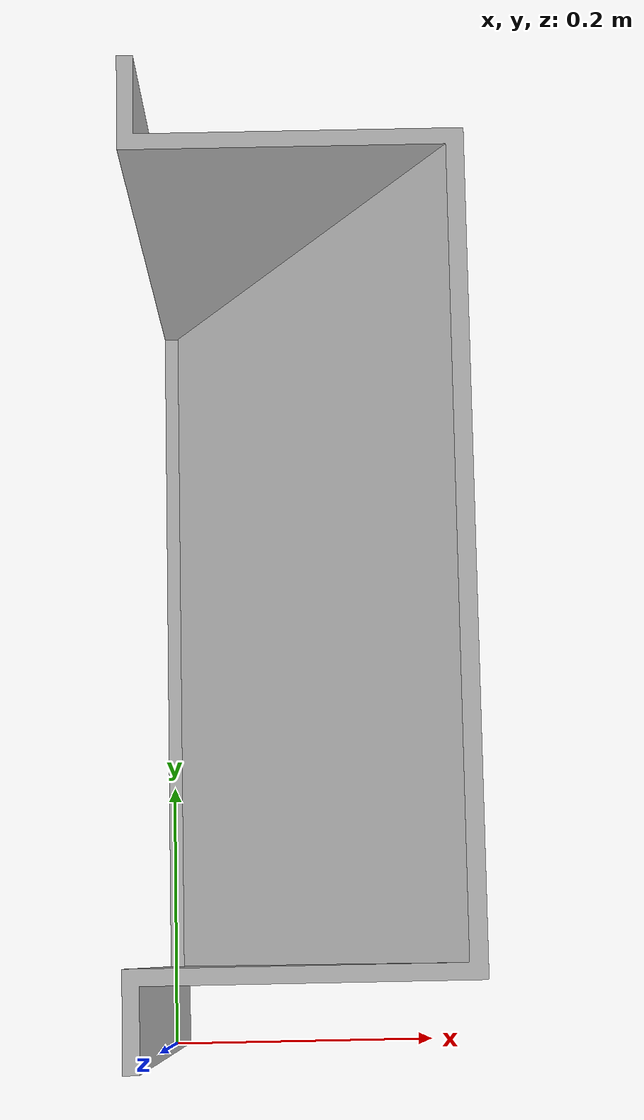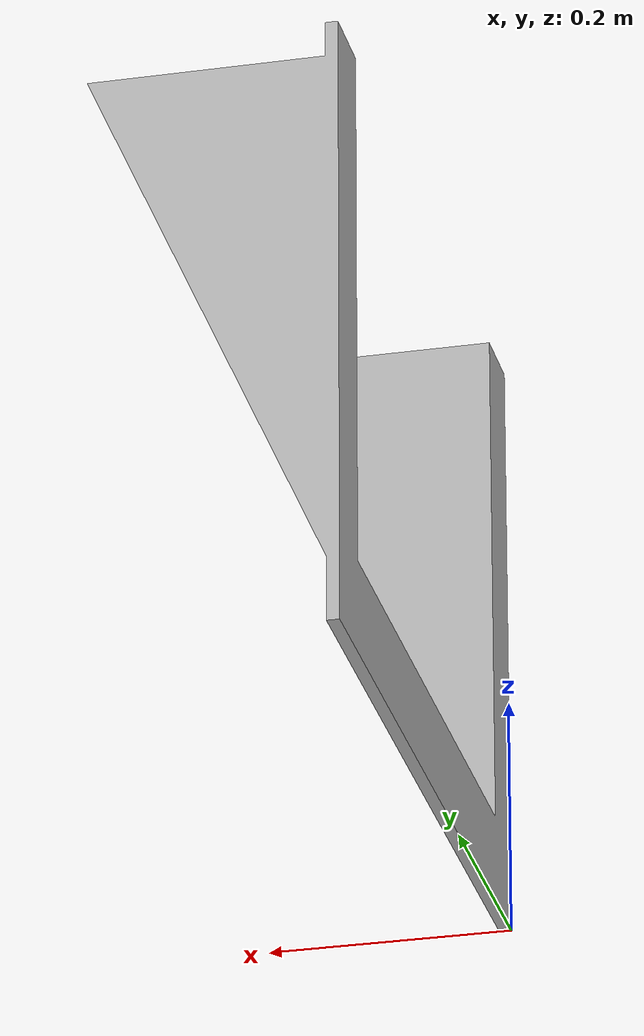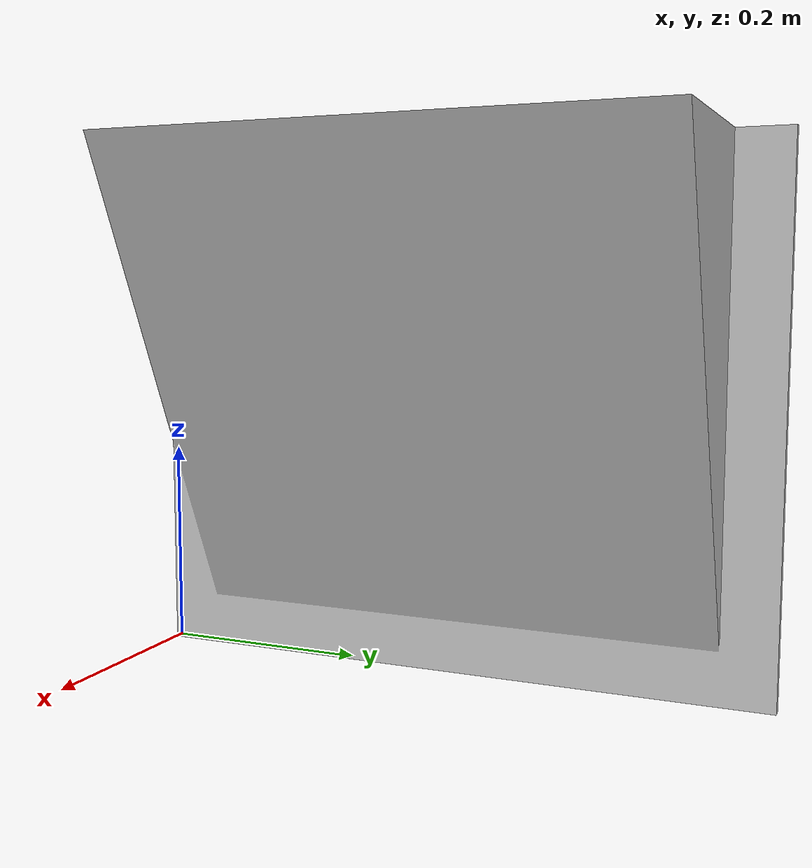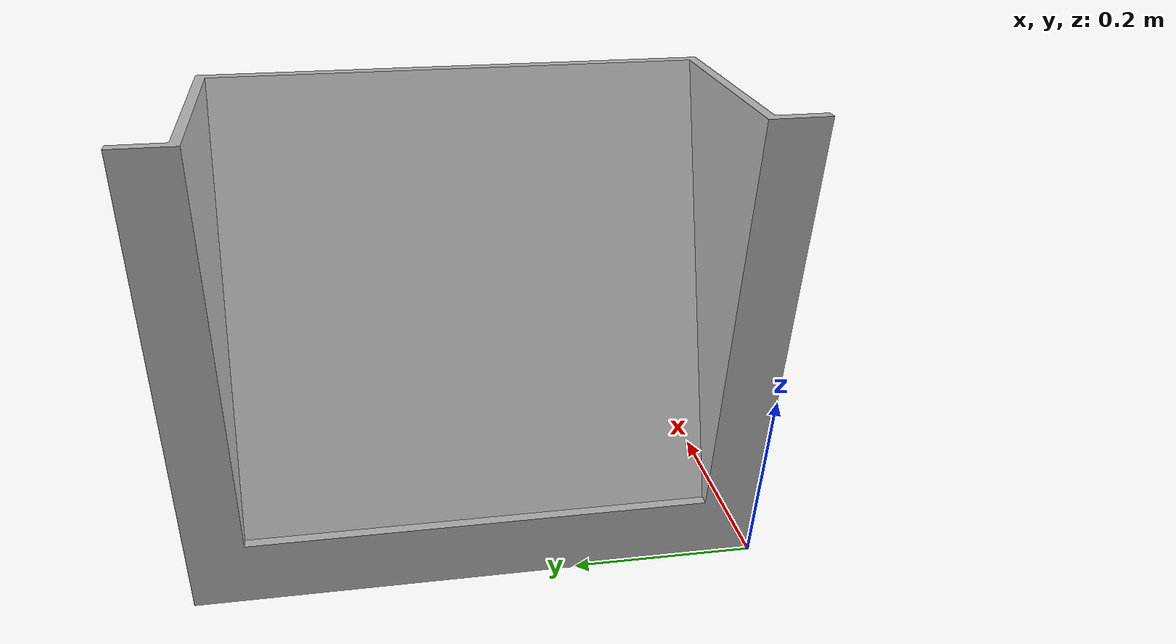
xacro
<?xml version="1.0" ?>
<robot name="SAMPLEBAG" xmlns:xacro="http://www.ros.org/wiki/xacro">

<xacro:include filename="../urdf/materials.xacro" />
<xacro:include filename="../urdf/SAMPLEBAG.trans" />
<xacro:include filename="../urdf/SAMPLEBAG.gazebo" />
<link name="base_link">
  <inertial>
    <origin xyz="0.07729964264631403 0.30500000000000005 0.2702287767228582" rpy="0 0 0"/>
    <mass value="33.06894752789176"/>
    <inertia ixx="1.903588" iyy="0.808453" izz="1.355435" ixy="0.0" iyz="0.0" ixz="-0.209256"/>
  </inertial>
  <visual>
    <origin xyz="0 0 0" rpy="0 0 0"/>
    <geometry>
      <mesh filename="../meshes/base_link.stl" scale="0.001 0.001 0.001"/>
    </geometry>
    <material name="silver"/>
  </visual>
  <collision>
    <origin xyz="0 0 0" rpy="0 0 0"/>
    <geometry>
      <mesh filename="../meshes/base_link.stl" scale="0.001 0.001 0.001"/>
    </geometry>
  </collision>
</link>

</robot>

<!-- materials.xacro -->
<robot name="SAMPLEBAG" xmlns:xacro="http://www.ros.org/wiki/xacro" >

<material name="silver">
  <color rgba="0.700 0.700 0.700 1.000"/>
</material>

</robot>

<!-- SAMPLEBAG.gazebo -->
<robot name="SAMPLEBAG" xmlns:xacro="http://www.ros.org/wiki/xacro" >

<xacro:property name="body_color" value="Gazebo/Silver" />

<gazebo>
  <plugin name="control" filename="libgazebo_ros_control.so"/>
</gazebo>
<gazebo reference="base_link">
  <material>${body_color}</material>
  <mu1>0.2</mu1>
  <mu2>0.2</mu2>
  <selfCollide>true</selfCollide>
  <gravity>true</gravity>
</gazebo>

</robot>
